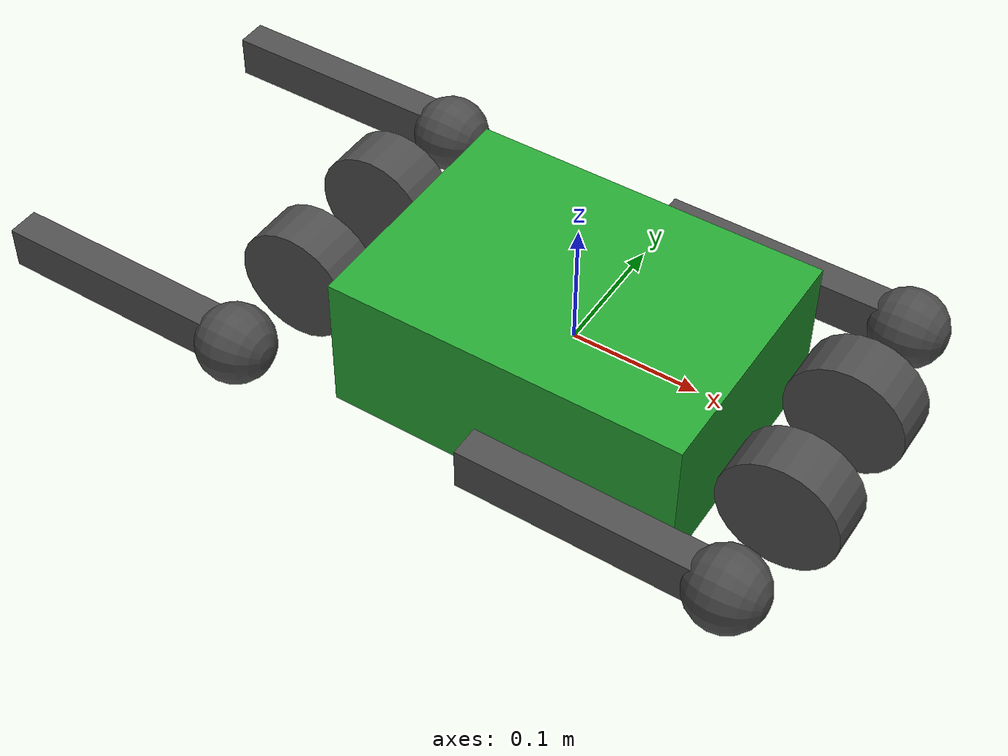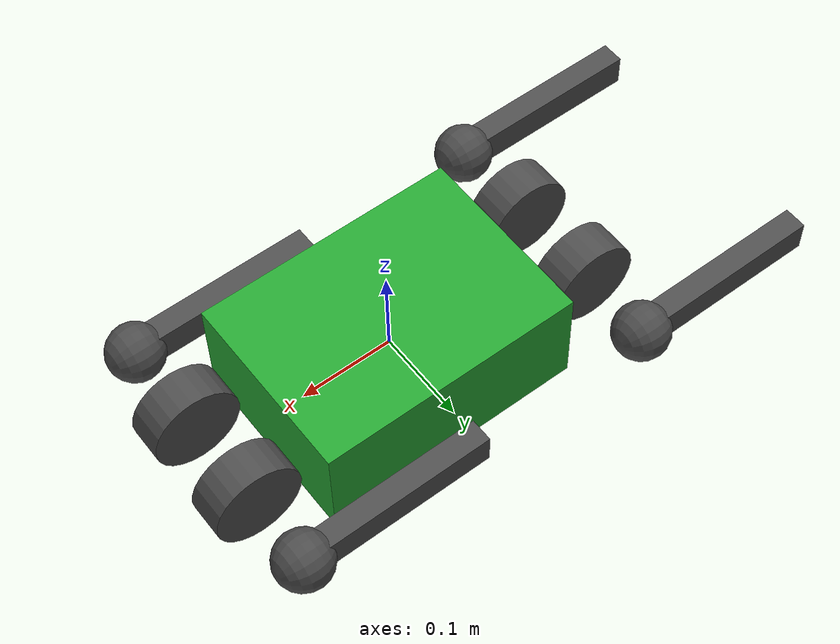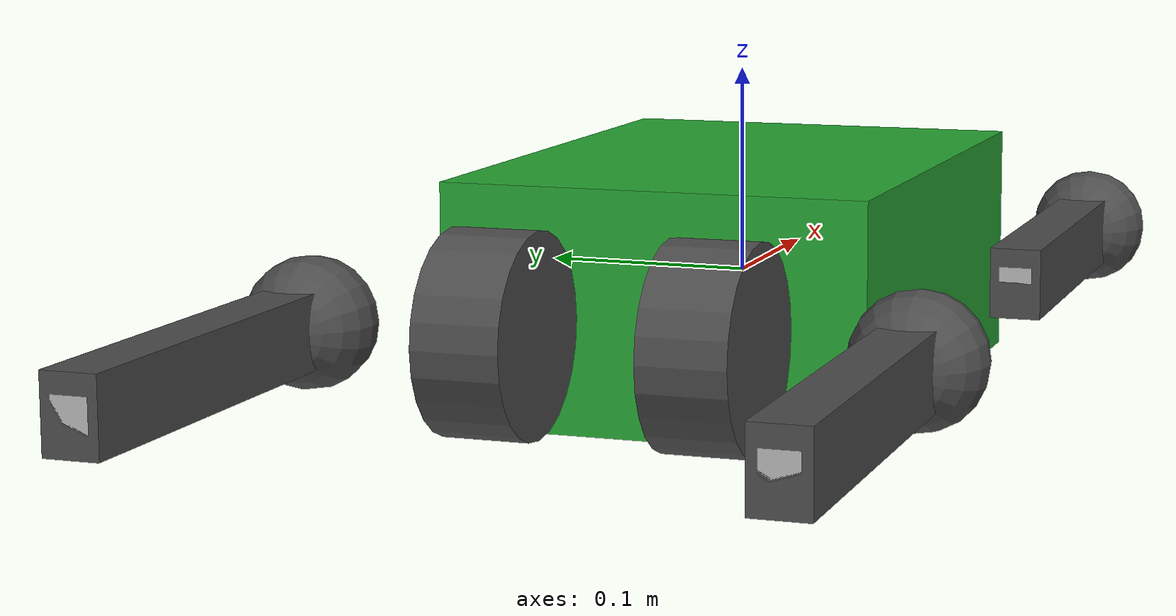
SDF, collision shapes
<sdf version='1.6'>
  <model name='wr2'>
    <link name='body'>
      <pose frame=''>0 0 0 0 -0 0</pose>
      <inertial>
        <pose frame=''>0.000676 -0.000166 -0.000173 0 -0 0</pose>
        <mass>4.9542</mass>
        <inertia>
          <ixx>0.0098737</ixx>
          <ixy>1.60821e-06</ixy>
          <ixz>6.10432e-06</ixz>
          <iyy>0.011313</iyy>
          <iyz>2.3576e-05</iyz>
          <izz>0.016884</izz>
        </inertia>
      </inertial>
      <collision name='body_collision_collision'>
        <pose frame=''>0 0 0 0 -0 0</pose>
        <geometry>
          <box>
            <size>0.28 0.202 0.114</size>
          </box>
        </geometry>
        <surface>
          <contact>
            <ode/>
          </contact>
          <friction>
            <ode/>
          </friction>
        </surface>
      </collision>
      <collision name='body_fixed_joint_lump__imu_link_collision_1'>
        <pose frame=''>0 0 0 0 -0 0</pose>
        <geometry>
          <box>
            <size>0.001 0.001 0.001</size>
          </box>
        </geometry>
        <surface>
          <contact>
            <ode/>
          </contact>
          <friction>
            <ode>
              <mu>0.5</mu>
              <mu2>0.5</mu2>
            </ode>
          </friction>
        </surface>
      </collision>
      <visual name='body_visual'>
        <pose frame=''>0 0 0 0 -0 0</pose>
        <geometry>
          <box>
            <size>0.001 0.001 0.001</size>
          </box>
        </geometry>
        <material>
          <script>
            <name>Gazebo/Green</name>
            <uri>file://media/materials/scripts/gazebo.material</uri>
          </script>
        </material>
      </visual>
      <visual name='body_visual_visual_1'>
        <pose frame=''>0 0 0 0 -0 0</pose>
        <geometry>
          <mesh>
            <scale>1 1 1</scale>
            <uri>model://wr2/meshes/base_link.STL</uri>
          </mesh>
        </geometry>
        <material>
          <script>
            <name>Gazebo/Green</name>
            <uri>file://media/materials/scripts/gazebo.material</uri>
          </script>
        </material>
      </visual>
      <visual name='body_fixed_joint_lump__imu_link_visual_2'>
        <pose frame=''>0 0 0 0 -0 0</pose>
        <geometry>
          <box>
            <size>0.001 0.001 0.001</size>
          </box>
        </geometry>
        <material>
          <script>
            <name>Gazebo/Red</name>
            <uri>file://media/materials/scripts/gazebo.material</uri>
          </script>
        </material>
      </visual>
      <velocity_decay/>
      <velocity_decay/>
      <velocity_decay/>
      <gravity>1</gravity>
      <sensor name='imu_sensor' type='imu'>
        <always_on>1</always_on>
        <update_rate>1000</update_rate>
        <visualize>1</visualize>
        <topic>__default_topic__</topic>
        <plugin name='imu_plugin' filename='libgazebo_ros_imu_sensor.so'>
          <topicName>trunk_imu</topicName>
          <bodyName>imu_link</bodyName>
          <updateRateHZ>1000.0</updateRateHZ>
          <gaussianNoise>0.0</gaussianNoise>
          <xyzOffset>0 0 0</xyzOffset>
          <rpyOffset>0 0 0</rpyOffset>
          <frameName>imu_link</frameName>
        </plugin>
        <pose frame=''>0 0 0 0 -0 0</pose>
      </sensor>
      <gravity>1</gravity>
      <velocity_decay/>
    </link>
    <link name='hip2'>
      <pose frame=''>0.1975 -0.05 0 0 -0 0</pose>
      <inertial>
        <pose frame=''>-0.003262 -0.004972 0.000385 0 -0 0</pose>
        <mass>0.74362</mass>
        <inertia>
          <ixx>0.00045939</ixx>
          <ixy>1.5543e-05</ixy>
          <ixz>6.1403e-07</ixz>
          <iyy>0.00075207</iyy>
          <iyz>-8.2076e-07</iyz>
          <izz>0.00049182</izz>
        </inertia>
      </inertial>
      <collision name='hip2_collision_collision'>
        <pose frame=''>0 0 0 1.5708 -0 0</pose>
        <geometry>
          <cylinder>
            <length>0.04</length>
            <radius>0.046</radius>
          </cylinder>
        </geometry>
        <surface>
          <contact>
            <ode/>
          </contact>
          <friction>
            <ode>
              <mu>0.5</mu>
              <mu2>0.5</mu2>
            </ode>
          </friction>
        </surface>
      </collision>
      <visual name='hip2_visual_visual'>
        <pose frame=''>0 0 0 -3.14159 -0 0</pose>
        <geometry>
          <mesh>
            <scale>1 1 1</scale>
            <uri>model://wr2/meshes/hip1_Link.STL</uri>
          </mesh>
        </geometry>
        <material>
          <script>
            <name>Gazebo/DarkGrey</name>
            <uri>file://media/materials/scripts/gazebo.material</uri>
          </script>
        </material>
      </visual>
      <gravity>1</gravity>
      <velocity_decay/>
    </link>
    <joint name='10' type='revolute'>
      <child>hip2</child>
      <parent>body</parent>
      <axis>
        <xyz>1 0 0</xyz>
        <limit>
          <lower>-0.785398</lower>
          <upper>0.785398</upper>
          <effort>33.5</effort>
          <velocity>21</velocity>
        </limit>
        <dynamics>
          <damping>0</damping>
          <friction>0</friction>
          <spring_reference>0</spring_reference>
          <spring_stiffness>0</spring_stiffness>
        </dynamics>
        <use_parent_model_frame>0</use_parent_model_frame>
      </axis>
    </joint>
    <link name='upper2'>
      <pose frame=''>0.1975 -0.1382 0 3.14159 1.57079 3.14159</pose>
      <inertial>
        <pose frame=''>-0.00293 0.022321 -0.020612 0 -0 0</pose>
        <mass>0.88958</mass>
        <inertia>
          <ixx>0.0016427</ixx>
          <ixy>-1.0138e-06</ixy>
          <ixz>-8.5809e-05</ixz>
          <iyy>0.0019549</iyy>
          <iyz>-1.1651e-06</iyz>
          <izz>0.00049228</izz>
        </inertia>
      </inertial>
      <collision name='upper2_collision_collision'>
        <pose frame=''>0 0 -0.1 3.14159 1.57079 3.14159</pose>
        <geometry>
          <box>
            <size>0.2 0.0245 0.034</size>
          </box>
        </geometry>
        <surface>
          <contact>
            <ode>
              <kp>1e+06</kp>
              <kd>1</kd>
            </ode>
          </contact>
          <friction>
            <ode>
              <mu>0.5</mu>
              <mu2>0.5</mu2>
            </ode>
          </friction>
        </surface>
      </collision>
      <visual name='upper2_visual_visual'>
        <pose frame=''>0 0 0 0 -0 0</pose>
        <geometry>
          <mesh>
            <scale>1 1 1</scale>
            <uri>model://wr2/meshes/upper1_Link.STL</uri>
          </mesh>
        </geometry>
        <material>
          <script>
            <name>Gazebo/DarkGrey</name>
            <uri>file://media/materials/scripts/gazebo.material</uri>
          </script>
        </material>
      </visual>
      <gravity>1</gravity>
      <velocity_decay/>
      <self_collide>0</self_collide>
    </link>
    <joint name='4' type='revolute'>
      <child>upper2</child>
      <parent>hip2</parent>
      <axis>
        <xyz>0 -1 0</xyz>
        <limit>
          <lower>-6.28319</lower>
          <upper>6.28319</upper>
          <effort>33.5</effort>
          <velocity>21</velocity>
        </limit>
        <dynamics>
          <damping>0</damping>
          <friction>0</friction>
          <spring_reference>0</spring_reference>
          <spring_stiffness>0</spring_stiffness>
        </dynamics>
        <use_parent_model_frame>0</use_parent_model_frame>
      </axis>
    </joint>
    <link name='lower2'>
      <pose frame=''>-0.0025 -0.1382 -0 3.14159 -1.57079 3.14159</pose>
      <inertial>
        <pose frame=''>0.006583 -3.5e-05 -0.059038 0 -0 0</pose>
        <mass>0.1193</mass>
        <inertia>
          <ixx>0.00033774</ixx>
          <ixy>-1.6102e-10</ixy>
          <ixz>4.2063e-05</ixz>
          <iyy>0.00034623</iyy>
          <iyz>-3.8747e-09</iyz>
          <izz>1.4561e-05</izz>
        </inertia>
      </inertial>
      <collision name='lower2_collision_collision'>
        <pose frame=''>0 0 -0.1 3.14159 1.57079 3.14159</pose>
        <geometry>
          <box>
            <size>0.2 0.016 0.016</size>
          </box>
        </geometry>
        <surface>
          <contact>
            <ode/>
          </contact>
          <friction>
            <ode>
              <mu>0.5</mu>
              <mu2>0.5</mu2>
            </ode>
          </friction>
        </surface>
      </collision>
      <visual name='lower2_visual_visual'>
        <pose frame=''>0 0 0 0 -0 0</pose>
        <geometry>
          <mesh>
            <scale>1 1 1</scale>
            <uri>model://wr2/meshes/lower0_Link.STL</uri>
          </mesh>
        </geometry>
        <material>
          <script>
            <uri>__default__</uri>
            <name>__default__</name>
          </script>
        </material>
      </visual>
      <gravity>1</gravity>
      <velocity_decay/>
      <self_collide>0</self_collide>
    </link>
    <joint name='5' type='revolute'>
      <child>lower2</child>
      <parent>upper2</parent>
      <axis>
        <xyz>0 1 0</xyz>
        <limit>
          <lower>-6.28319</lower>
          <upper>6.28319</upper>
          <effort>33.5</effort>
          <velocity>21</velocity>
        </limit>
        <dynamics>
          <damping>0</damping>
          <friction>0</friction>
          <spring_reference>0</spring_reference>
          <spring_stiffness>0</spring_stiffness>
        </dynamics>
        <use_parent_model_frame>0</use_parent_model_frame>
      </axis>
    </joint>
    <link name='toe2'>
      <pose frame=''>0.1975 -0.1382 0 3.14159 -1.57079 3.14159</pose>
      <inertial>
        <pose frame=''>0 0 0 0 -0 0</pose>
        <mass>0.013559</mass>
        <inertia>
          <ixx>4.88124e-06</ixx>
          <ixy>0</ixy>
          <ixz>0</ixz>
          <iyy>4.88124e-06</iyy>
          <iyz>0</iyz>
          <izz>4.88124e-06</izz>
        </inertia>
      </inertial>
      <collision name='toe2_collision_collision'>
        <pose frame=''>0 0 0 0 -0 0</pose>
        <geometry>
          <sphere>
            <radius>0.03</radius>
          </sphere>
        </geometry>
        <surface>
          <contact>
            <ode>
              <kp>1e+06</kp>
              <kd>1</kd>
            </ode>
          </contact>
          <friction>
            <ode>
              <mu>0.6</mu>
              <mu2>0.6</mu2>
            </ode>
          </friction>
        </surface>
      </collision>
      <visual name='toe2_visual_visual'>
        <pose frame=''>0 0 0 0 -0 0</pose>
        <geometry>
          <sphere>
            <radius>0.02</radius>
          </sphere>
        </geometry>
        <material>
          <script>
            <name>Gazebo/DarkGrey</name>
            <uri>file://media/materials/scripts/gazebo.material</uri>
          </script>
        </material>
      </visual>
      <velocity_decay/>
      <sensor name='toe2_contact' type='contact'>
        <plugin name='toe2_plugin' filename='libgazebo_ros_bumper.so'>
          <alwaysOn>1</alwaysOn>
          <updateRate>500</updateRate>
          <bumperTopicName>gazebo/toe2_contact_state</bumperTopicName>
          <frameName>world</frameName>
        </plugin>
        <contact>
          <collision>toe2_collision</collision>
          <topic>__default_topic__</topic>
        </contact>
        <update_rate>500</update_rate>
      </sensor>
      <gravity>1</gravity>
      <velocity_decay/>
      <self_collide>0</self_collide>
    </link>
    <joint name='jtoe2' type='fixed'>
      <child>toe2</child>
      <parent>lower2</parent>
      <axis>
        <dynamics>
          <spring_reference>0</spring_reference>
          <spring_stiffness>0</spring_stiffness>
        </dynamics>
        <xyz>0 0 1</xyz>
        <use_parent_model_frame>0</use_parent_model_frame>
        <limit>
          <lower>-1e+16</lower>
          <upper>1e+16</upper>
        </limit>
      </axis>
      <physics>
        <ode>
          <limit>
            <cfm>0</cfm>
            <erp>0.2</erp>
          </limit>
        </ode>
      </physics>
    </joint>
    <link name='hip3'>
      <pose frame=''>-0.1975 -0.05 0 0 -0 0</pose>
      <inertial>
        <pose frame=''>0.003262 -0.004972 0.000385 0 -0 0</pose>
        <mass>0.74362</mass>
        <inertia>
          <ixx>0.00045939</ixx>
          <ixy>-1.5543e-05</ixy>
          <ixz>-6.1403e-07</ixz>
          <iyy>0.00075207</iyy>
          <iyz>-8.2076e-07</iyz>
          <izz>0.00049182</izz>
        </inertia>
      </inertial>
      <collision name='hip3_collision_collision'>
        <pose frame=''>0 0 0 1.5708 -0 0</pose>
        <geometry>
          <cylinder>
            <length>0.04</length>
            <radius>0.046</radius>
          </cylinder>
        </geometry>
        <surface>
          <contact>
            <ode/>
          </contact>
          <friction>
            <ode>
              <mu>0.5</mu>
              <mu2>0.5</mu2>
            </ode>
          </friction>
        </surface>
      </collision>
      <visual name='hip3_visual_visual'>
        <pose frame=''>0 0 0 0 -0 3.14159</pose>
        <geometry>
          <mesh>
            <scale>1 1 1</scale>
            <uri>model://wr2/meshes/hip0_Link.STL</uri>
          </mesh>
        </geometry>
        <material>
          <script>
            <name>Gazebo/DarkGrey</name>
            <uri>file://media/materials/scripts/gazebo.material</uri>
          </script>
        </material>
      </visual>
      <gravity>1</gravity>
      <velocity_decay/>
    </link>
    <joint name='11' type='revolute'>
      <child>hip3</child>
      <parent>body</parent>
      <axis>
        <xyz>1 0 0</xyz>
        <limit>
          <lower>-0.785398</lower>
          <upper>0.785398</upper>
          <effort>33.5</effort>
          <velocity>21</velocity>
        </limit>
        <dynamics>
          <damping>0</damping>
          <friction>0</friction>
          <spring_reference>0</spring_reference>
          <spring_stiffness>0</spring_stiffness>
        </dynamics>
        <use_parent_model_frame>0</use_parent_model_frame>
      </axis>
    </joint>
    <link name='upper3'>
      <pose frame=''>-0.1975 -0.1382 0 3.14159 1.57079 3.14159</pose>
      <inertial>
        <pose frame=''>-0.00293 0.022321 -0.020612 0 -0 0</pose>
        <mass>0.88958</mass>
        <inertia>
          <ixx>0.0016427</ixx>
          <ixy>-1.0138e-06</ixy>
          <ixz>-8.5809e-05</ixz>
          <iyy>0.0019549</iyy>
          <iyz>-1.1651e-06</iyz>
          <izz>0.00049228</izz>
        </inertia>
      </inertial>
      <collision name='upper3_collision_collision'>
        <pose frame=''>0 0 -0.1 3.14159 1.57079 3.14159</pose>
        <geometry>
          <box>
            <size>0.2 0.0245 0.034</size>
          </box>
        </geometry>
        <surface>
          <contact>
            <ode>
              <kp>1e+06</kp>
              <kd>1</kd>
            </ode>
          </contact>
          <friction>
            <ode>
              <mu>0.5</mu>
              <mu2>0.5</mu2>
            </ode>
          </friction>
        </surface>
      </collision>
      <visual name='upper3_visual_visual'>
        <pose frame=''>0 0 0 0 -0 0</pose>
        <geometry>
          <mesh>
            <scale>1 1 1</scale>
            <uri>model://wr2/meshes/upper1_Link.STL</uri>
          </mesh>
        </geometry>
        <material>
          <script>
            <name>Gazebo/DarkGrey</name>
            <uri>file://media/materials/scripts/gazebo.material</uri>
          </script>
        </material>
      </visual>
      <gravity>1</gravity>
      <velocity_decay/>
      <self_collide>0</self_collide>
    </link>
    <joint name='6' type='revolute'>
      <child>upper3</child>
      <parent>hip3</parent>
      <axis>
        <xyz>0 -1 0</xyz>
        <limit>
          <lower>-6.28319</lower>
          <upper>6.28319</upper>
          <effort>33.5</effort>
          <velocity>21</velocity>
        </limit>
        <dynamics>
          <damping>0</damping>
          <friction>0</friction>
          <spring_reference>0</spring_reference>
          <spring_stiffness>0</spring_stiffness>
        </dynamics>
        <use_parent_model_frame>0</use_parent_model_frame>
      </axis>
    </joint>
    <link name='lower3'>
      <pose frame=''>-0.3975 -0.1382 -0 3.14159 -1.57079 3.14159</pose>
      <inertial>
        <pose frame=''>0.006583 -3.5e-05 -0.059038 0 -0 0</pose>
        <mass>0.1193</mass>
        <inertia>
          <ixx>0.00033774</ixx>
          <ixy>-1.6102e-10</ixy>
          <ixz>4.2063e-05</ixz>
          <iyy>0.00034623</iyy>
          <iyz>-3.8747e-09</iyz>
          <izz>1.4561e-05</izz>
        </inertia>
      </inertial>
      <collision name='lower3_collision_collision'>
        <pose frame=''>0 0 -0.1 3.14159 1.57079 3.14159</pose>
        <geometry>
          <box>
            <size>0.2 0.016 0.016</size>
          </box>
        </geometry>
        <surface>
          <contact>
            <ode/>
          </contact>
          <friction>
            <ode>
              <mu>0.5</mu>
              <mu2>0.5</mu2>
            </ode>
          </friction>
        </surface>
      </collision>
      <visual name='lower3_visual_visual'>
        <pose frame=''>0 0 0 0 -0 0</pose>
        <geometry>
          <mesh>
            <scale>1 1 1</scale>
            <uri>model://wr2/meshes/lower0_Link.STL</uri>
          </mesh>
        </geometry>
        <material>
          <script>
            <uri>__default__</uri>
            <name>__default__</name>
          </script>
        </material>
      </visual>
      <gravity>1</gravity>
      <velocity_decay/>
      <self_collide>0</self_collide>
    </link>
    <joint name='7' type='revolute'>
      <child>lower3</child>
      <parent>upper3</parent>
      <axis>
        <xyz>0 1 0</xyz>
        <limit>
          <lower>-6.28319</lower>
          <upper>6.28319</upper>
          <effort>33.5</effort>
          <velocity>21</velocity>
        </limit>
        <dynamics>
          <damping>0</damping>
          <friction>0</friction>
          <spring_reference>0</spring_reference>
          <spring_stiffness>0</spring_stiffness>
        </dynamics>
        <use_parent_model_frame>0</use_parent_model_frame>
      </axis>
    </joint>
    <link name='toe3'>
      <pose frame=''>-0.1975 -0.1382 0 3.14159 -1.57079 3.14159</pose>
      <inertial>
        <pose frame=''>0 0 0 0 -0 0</pose>
        <mass>0.013559</mass>
        <inertia>
          <ixx>4.88124e-06</ixx>
          <ixy>0</ixy>
          <ixz>0</ixz>
          <iyy>4.88124e-06</iyy>
          <iyz>0</iyz>
          <izz>4.88124e-06</izz>
        </inertia>
      </inertial>
      <collision name='toe3_collision_collision'>
        <pose frame=''>0 0 0 0 -0 0</pose>
        <geometry>
          <sphere>
            <radius>0.03</radius>
          </sphere>
        </geometry>
        <surface>
          <contact>
            <ode>
              <kp>1e+06</kp>
              <kd>1</kd>
            </ode>
          </contact>
          <friction>
            <ode>
              <mu>0.6</mu>
              <mu2>0.6</mu2>
            </ode>
          </friction>
        </surface>
      </collision>
      <visual name='toe3_visual_visual'>
        <pose frame=''>0 0 0 0 -0 0</pose>
        <geometry>
          <sphere>
            <radius>0.02</radius>
          </sphere>
        </geometry>
        <material>
          <script>
            <name>Gazebo/DarkGrey</name>
            <uri>file://media/materials/scripts/gazebo.material</uri>
          </script>
        </material>
      </visual>
      <velocity_decay/>
      <sensor name='toe3_contact' type='contact'>
        <plugin name='toe3_plugin' filename='libgazebo_ros_bumper.so'>
          <alwaysOn>1</alwaysOn>
          <updateRate>500</updateRate>
          <bumperTopicName>gazebo/toe3_contact_state</bumperTopicName>
          <frameName>world</frameName>
        </plugin>
        <contact>
          <collision>toe3_collision</collision>
          <topic>__default_topic__</topic>
        </contact>
        <update_rate>500</update_rate>
      </sensor>
      <gravity>1</gravity>
      <velocity_decay/>
      <self_collide>0</self_collide>
    </link>
    <joint name='jtoe3' type='fixed'>
      <child>toe3</child>
      <parent>lower3</parent>
      <axis>
        <dynamics>
          <spring_reference>0</spring_reference>
          <spring_stiffness>0</spring_stiffness>
        </dynamics>
        <xyz>0 0 1</xyz>
        <use_parent_model_frame>0</use_parent_model_frame>
        <limit>
          <lower>-1e+16</lower>
          <upper>1e+16</upper>
        </limit>
      </axis>
      <physics>
        <ode>
          <limit>
            <cfm>0</cfm>
            <erp>0.2</erp>
          </limit>
        </ode>
      </physics>
    </joint>
    <link name='hip0'>
      <pose frame=''>0.1975 0.05 0 0 -0 0</pose>
      <inertial>
        <pose frame=''>-0.003262 0.004972 0.000385 0 -0 0</pose>
        <mass>0.74362</mass>
        <inertia>
          <ixx>0.00045939</ixx>
          <ixy>-1.5543e-05</ixy>
          <ixz>6.1403e-07</ixz>
          <iyy>0.00075207</iyy>
          <iyz>8.2076e-07</iyz>
          <izz>0.00049182</izz>
        </inertia>
      </inertial>
      <collision name='hip0_collision_collision'>
        <pose frame=''>0 0 0 1.5708 -0 0</pose>
        <geometry>
          <cylinder>
            <length>0.04</length>
            <radius>0.046</radius>
          </cylinder>
        </geometry>
        <surface>
          <contact>
            <ode/>
          </contact>
          <friction>
            <ode>
              <mu>0.5</mu>
              <mu2>0.5</mu2>
            </ode>
          </friction>
        </surface>
      </collision>
      <visual name='hip0_visual_visual'>
        <pose frame=''>0 0 0 0 -0 0</pose>
        <geometry>
          <mesh>
            <scale>1 1 1</scale>
            <uri>model://wr2/meshes/hip0_Link.STL</uri>
          </mesh>
        </geometry>
        <material>
          <script>
            <name>Gazebo/DarkGrey</name>
            <uri>file://media/materials/scripts/gazebo.material</uri>
          </script>
        </material>
      </visual>
      <gravity>1</gravity>
      <velocity_decay/>
    </link>
    <joint name='8' type='revolute'>
      <child>hip0</child>
      <parent>body</parent>
      <axis>
        <xyz>1 0 0</xyz>
        <limit>
          <lower>-0.785398</lower>
          <upper>0.785398</upper>
          <effort>33.5</effort>
          <velocity>21</velocity>
        </limit>
        <dynamics>
          <damping>0</damping>
          <friction>0</friction>
          <spring_reference>0</spring_reference>
          <spring_stiffness>0</spring_stiffness>
        </dynamics>
        <use_parent_model_frame>0</use_parent_model_frame>
      </axis>
    </joint>
    <link name='upper0'>
      <pose frame=''>0.1975 0.1382 0 3.14159 1.57079 3.14159</pose>
      <inertial>
        <pose frame=''>-0.00293 -0.022321 -0.020612 0 -0 0</pose>
        <mass>0.88958</mass>
        <inertia>
          <ixx>0.0016427</ixx>
          <ixy>1.0138e-06</ixy>
          <ixz>-8.5809e-05</ixz>
          <iyy>0.0019549</iyy>
          <iyz>1.1651e-06</iyz>
          <izz>0.00049228</izz>
        </inertia>
      </inertial>
      <collision name='upper0_collision_collision'>
        <pose frame=''>0 0 -0.1 3.14159 1.57079 3.14159</pose>
        <geometry>
          <box>
            <size>0.2 0.0245 0.034</size>
          </box>
        </geometry>
        <surface>
          <contact>
            <ode>
              <kp>1e+06</kp>
              <kd>1</kd>
            </ode>
          </contact>
          <friction>
            <ode>
              <mu>0.5</mu>
              <mu2>0.5</mu2>
            </ode>
          </friction>
        </surface>
      </collision>
      <visual name='upper0_visual_visual'>
        <pose frame=''>0 0 0 0 -0 0</pose>
        <geometry>
          <mesh>
            <scale>1 1 1</scale>
            <uri>model://wr2/meshes/upper0_Link.STL</uri>
          </mesh>
        </geometry>
        <material>
          <script>
            <name>Gazebo/DarkGrey</name>
            <uri>file://media/materials/scripts/gazebo.material</uri>
          </script>
        </material>
      </visual>
      <gravity>1</gravity>
      <velocity_decay/>
      <self_collide>0</self_collide>
    </link>
    <joint name='0' type='revolute'>
      <child>upper0</child>
      <parent>hip0</parent>
      <axis>
        <xyz>0 -1 0</xyz>
        <limit>
          <lower>-6.28319</lower>
          <upper>6.28319</upper>
          <effort>33.5</effort>
          <velocity>21</velocity>
        </limit>
        <dynamics>
          <damping>0</damping>
          <friction>0</friction>
          <spring_reference>0</spring_reference>
          <spring_stiffness>0</spring_stiffness>
        </dynamics>
        <use_parent_model_frame>0</use_parent_model_frame>
      </axis>
    </joint>
    <link name='lower0'>
      <pose frame=''>-0.0025 0.1382 -0 3.14159 -1.57079 3.14159</pose>
      <inertial>
        <pose frame=''>0.006583 -3.5e-05 -0.059038 0 -0 0</pose>
        <mass>0.1193</mass>
        <inertia>
          <ixx>0.00033774</ixx>
          <ixy>-1.6102e-10</ixy>
          <ixz>4.2063e-05</ixz>
          <iyy>0.00034623</iyy>
          <iyz>-3.8747e-09</iyz>
          <izz>1.4561e-05</izz>
        </inertia>
      </inertial>
      <collision name='lower0_collision_collision'>
        <pose frame=''>0 0 -0.1 3.14159 1.57079 3.14159</pose>
        <geometry>
          <box>
            <size>0.2 0.016 0.016</size>
          </box>
        </geometry>
        <surface>
          <contact>
            <ode/>
          </contact>
          <friction>
            <ode>
              <mu>0.5</mu>
              <mu2>0.5</mu2>
            </ode>
          </friction>
        </surface>
      </collision>
      <visual name='lower0_visual_visual'>
        <pose frame=''>0 0 0 0 -0 0</pose>
        <geometry>
          <mesh>
            <scale>1 1 1</scale>
            <uri>model://wr2/meshes/lower0_Link.STL</uri>
          </mesh>
        </geometry>
        <material>
          <script>
            <uri>__default__</uri>
            <name>__default__</name>
          </script>
        </material>
      </visual>
      <gravity>1</gravity>
      <velocity_decay/>
      <self_collide>0</self_collide>
    </link>
    <joint name='1' type='revolute'>
      <child>lower0</child>
      <parent>upper0</parent>
      <axis>
        <xyz>0 1 0</xyz>
        <limit>
          <lower>-6.28319</lower>
          <upper>6.28319</upper>
          <effort>33.5</effort>
          <velocity>21</velocity>
        </limit>
        <dynamics>
          <damping>0</damping>
          <friction>0</friction>
          <spring_reference>0</spring_reference>
          <spring_stiffness>0</spring_stiffness>
        </dynamics>
        <use_parent_model_frame>0</use_parent_model_frame>
      </axis>
    </joint>
    <link name='toe0'>
      <pose frame=''>0.1975 0.1382 0 3.14159 -1.57079 3.14159</pose>
      <inertial>
        <pose frame=''>0 0 0 0 -0 0</pose>
        <mass>0.013559</mass>
        <inertia>
          <ixx>4.88124e-06</ixx>
          <ixy>0</ixy>
          <ixz>0</ixz>
          <iyy>4.88124e-06</iyy>
          <iyz>0</iyz>
          <izz>4.88124e-06</izz>
        </inertia>
      </inertial>
      <collision name='toe0_collision_collision'>
        <pose frame=''>0 0 0 0 -0 0</pose>
        <geometry>
          <sphere>
            <radius>0.03</radius>
          </sphere>
        </geometry>
        <surface>
          <contact>
            <ode>
              <kp>1e+06</kp>
              <kd>1</kd>
            </ode>
          </contact>
          <friction>
            <ode>
              <mu>0.6</mu>
              <mu2>0.6</mu2>
            </ode>
          </friction>
        </surface>
      </collision>
      <visual name='toe0_visual_visual'>
        <pose frame=''>0 0 0 0 -0 0</pose>
        <geometry>
          <sphere>
            <radius>0.02</radius>
          </sphere>
        </geometry>
        <material>
          <script>
            <name>Gazebo/DarkGrey</name>
            <uri>file://media/materials/scripts/gazebo.material</uri>
          </script>
        </material>
      </visual>
      <velocity_decay/>
      <sensor name='toe0_contact' type='contact'>
        <plugin name='toe0_plugin' filename='libgazebo_ros_bumper.so'>
          <alwaysOn>1</alwaysOn>
          <updateRate>500</updateRate>
          <bumperTopicName>gazebo/toe0_contact_state</bumperTopicName>
          <frameName>world</frameName>
        </plugin>
        <contact>
          <collision>toe0_collision</collision>
          <topic>__default_topic__</topic>
        </contact>
        <update_rate>500</update_rate>
      </sensor>
      <gravity>1</gravity>
      <velocity_decay/>
      <self_collide>0</self_collide>
    </link>
    <joint name='jtoe0' type='fixed'>
      <child>toe0</child>
      <parent>lower0</parent>
      <axis>
        <dynamics>
          <spring_reference>0</spring_reference>
          <spring_stiffness>0</spring_stiffness>
        </dynamics>
        <xyz>0 0 1</xyz>
        <use_parent_model_frame>0</use_parent_model_frame>
        <limit>
          <lower>-1e+16</lower>
          <upper>1e+16</upper>
        </limit>
      </axis>
      <physics>
        <ode>
          <limit>
            <cfm>0</cfm>
            <erp>0.2</erp>
          </limit>
        </ode>
      </physics>
    </joint>
    <link name='hip1'>
      <pose frame=''>-0.1975 0.05 0 0 -0 0</pose>
      <inertial>
        <pose frame=''>0.003262 0.004972 0.000385 0 -0 0</pose>
        <mass>0.74362</mass>
        <inertia>
          <ixx>0.00045939</ixx>
          <ixy>1.5543e-05</ixy>
          <ixz>-6.1403e-07</ixz>
          <iyy>0.00075207</iyy>
          <iyz>8.2076e-07</iyz>
          <izz>0.00049182</izz>
        </inertia>
      </inertial>
      <collision name='hip1_collision_collision'>
        <pose frame=''>0 0 0 1.5708 -0 0</pose>
        <geometry>
          <cylinder>
            <length>0.04</length>
            <radius>0.046</radius>
          </cylinder>
        </geometry>
        <surface>
          <contact>
            <ode/>
          </contact>
          <friction>
            <ode>
              <mu>0.5</mu>
              <mu2>0.5</mu2>
            </ode>
          </friction>
        </surface>
      </collision>
      <visual name='hip1_visual_visual'>
        <pose frame=''>0 0 0 3.14159 -0 3.14159</pose>
        <geometry>
          <mesh>
            <scale>1 1 1</scale>
            <uri>model://wr2/meshes/hip0_Link.STL</uri>
          </mesh>
        </geometry>
        <material>
          <script>
            <name>Gazebo/DarkGrey</name>
            <uri>file://media/materials/scripts/gazebo.material</uri>
          </script>
        </material>
      </visual>
      <gravity>1</gravity>
      <velocity_decay/>
    </link>
    <joint name='9' type='revolute'>
      <child>hip1</child>
      <parent>body</parent>
      <axis>
        <xyz>1 0 0</xyz>
        <limit>
          <lower>-0.785398</lower>
          <upper>0.785398</upper>
          <effort>33.5</effort>
          <velocity>21</velocity>
        </limit>
        <dynamics>
          <damping>0</damping>
          <friction>0</friction>
          <spring_reference>0</spring_reference>
          <spring_stiffness>0</spring_stiffness>
        </dynamics>
        <use_parent_model_frame>0</use_parent_model_frame>
      </axis>
    </joint>
    <link name='upper1'>
      <pose frame=''>-0.1975 0.1382 0 3.14159 1.57079 3.14159</pose>
      <inertial>
        <pose frame=''>-0.00293 -0.022321 -0.020612 0 -0 0</pose>
        <mass>0.88958</mass>
        <inertia>
          <ixx>0.0016427</ixx>
          <ixy>1.0138e-06</ixy>
          <ixz>-8.5809e-05</ixz>
          <iyy>0.0019549</iyy>
          <iyz>1.1651e-06</iyz>
          <izz>0.00049228</izz>
        </inertia>
      </inertial>
      <collision name='upper1_collision_collision'>
        <pose frame=''>0 0 -0.1 3.14159 1.57079 3.14159</pose>
        <geometry>
          <box>
            <size>0.2 0.0245 0.034</size>
          </box>
        </geometry>
        <surface>
          <contact>
            <ode>
              <kp>1e+06</kp>
              <kd>1</kd>
            </ode>
          </contact>
          <friction>
            <ode>
              <mu>0.5</mu>
              <mu2>0.5</mu2>
            </ode>
          </friction>
        </surface>
      </collision>
      <visual name='upper1_visual_visual'>
        <pose frame=''>0 0 0 0 -0 0</pose>
        <geometry>
          <mesh>
            <scale>1 1 1</scale>
            <uri>model://wr2/meshes/upper0_Link.STL</uri>
          </mesh>
        </geometry>
        <material>
          <script>
            <name>Gazebo/DarkGrey</name>
            <uri>file://media/materials/scripts/gazebo.material</uri>
          </script>
        </material>
      </visual>
      <gravity>1</gravity>
      <velocity_decay/>
      <self_collide>0</self_collide>
    </link>
    <joint name='2' type='revolute'>
      <child>upper1</child>
      <parent>hip1</parent>
      <axis>
        <xyz>0 -1 0</xyz>
        <limit>
          <lower>-6.28319</lower>
          <upper>6.28319</upper>
          <effort>33.5</effort>
          <velocity>21</velocity>
        </limit>
        <dynamics>
          <damping>0</damping>
          <friction>0</friction>
          <spring_reference>0</spring_reference>
          <spring_stiffness>0</spring_stiffness>
        </dynamics>
        <use_parent_model_frame>0</use_parent_model_frame>
      </axis>
    </joint>
    <link name='lower1'>
      <pose frame=''>-0.3975 0.1382 -0 3.14159 -1.57079 3.14159</pose>
      <inertial>
        <pose frame=''>0.006583 -3.5e-05 -0.059038 0 -0 0</pose>
        <mass>0.1193</mass>
        <inertia>
          <ixx>0.00033774</ixx>
          <ixy>-1.6102e-10</ixy>
          <ixz>4.2063e-05</ixz>
          <iyy>0.00034623</iyy>
          <iyz>-3.8747e-09</iyz>
          <izz>1.4561e-05</izz>
        </inertia>
      </inertial>
      <collision name='lower1_collision_collision'>
        <pose frame=''>0 0 -0.1 3.14159 1.57079 3.14159</pose>
        <geometry>
          <box>
            <size>0.2 0.016 0.016</size>
          </box>
        </geometry>
        <surface>
          <contact>
            <ode/>
          </contact>
          <friction>
            <ode>
              <mu>0.5</mu>
              <mu2>0.5</mu2>
            </ode>
          </friction>
        </surface>
      </collision>
      <visual name='lower1_visual_visual'>
        <pose frame=''>0 0 0 0 -0 0</pose>
        <geometry>
          <mesh>
            <scale>1 1 1</scale>
            <uri>model://wr2/meshes/lower0_Link.STL</uri>
          </mesh>
        </geometry>
        <material>
          <script>
            <uri>__default__</uri>
            <name>__default__</name>
          </script>
        </material>
      </visual>
      <gravity>1</gravity>
      <velocity_decay/>
      <self_collide>0</self_collide>
    </link>
    <joint name='3' type='revolute'>
      <child>lower1</child>
      <parent>upper1</parent>
      <axis>
        <xyz>0 1 0</xyz>
        <limit>
          <lower>-6.28319</lower>
          <upper>6.28319</upper>
          <effort>33.5</effort>
          <velocity>21</velocity>
        </limit>
        <dynamics>
          <damping>0</damping>
          <friction>0</friction>
          <spring_reference>0</spring_reference>
          <spring_stiffness>0</spring_stiffness>
        </dynamics>
        <use_parent_model_frame>0</use_parent_model_frame>
      </axis>
    </joint>
    <link name='toe1'>
      <pose frame=''>-0.1975 0.1382 0 3.14159 -1.57079 3.14159</pose>
      <inertial>
        <pose frame=''>0 0 0 0 -0 0</pose>
        <mass>0.013559</mass>
        <inertia>
          <ixx>4.88124e-06</ixx>
          <ixy>0</ixy>
          <ixz>0</ixz>
          <iyy>4.88124e-06</iyy>
          <iyz>0</iyz>
          <izz>4.88124e-06</izz>
        </inertia>
      </inertial>
      <collision name='toe1_collision_collision'>
        <pose frame=''>0 0 0 0 -0 0</pose>
        <geometry>
          <sphere>
            <radius>0.03</radius>
          </sphere>
        </geometry>
        <surface>
          <contact>
            <ode>
              <kp>1e+06</kp>
              <kd>1</kd>
            </ode>
          </contact>
          <friction>
            <ode>
              <mu>0.6</mu>
              <mu2>0.6</mu2>
            </ode>
          </friction>
        </surface>
      </collision>
      <visual name='toe1_visual_visual'>
        <pose frame=''>0 0 0 0 -0 0</pose>
        <geometry>
          <sphere>
            <radius>0.02</radius>
          </sphere>
        </geometry>
        <material>
          <script>
            <name>Gazebo/DarkGrey</name>
            <uri>file://media/materials/scripts/gazebo.material</uri>
          </script>
        </material>
      </visual>
      <velocity_decay/>
      <sensor name='toe1_contact' type='contact'>
        <plugin name='toe1_plugin' filename='libgazebo_ros_bumper.so'>
          <alwaysOn>1</alwaysOn>
          <updateRate>500</updateRate>
          <bumperTopicName>gazebo/toe1_contact_state</bumperTopicName>
          <frameName>world</frameName>
        </plugin>
        <contact>
          <collision>toe1_collision</collision>
          <topic>__default_topic__</topic>
        </contact>
        <update_rate>500</update_rate>
      </sensor>
      <gravity>1</gravity>
      <velocity_decay/>
      <self_collide>0</self_collide>
    </link>
    <joint name='jtoe1' type='fixed'>
      <child>toe1</child>
      <parent>lower1</parent>
      <axis>
        <dynamics>
          <spring_reference>0</spring_reference>
          <spring_stiffness>0</spring_stiffness>
        </dynamics>
        <xyz>0 0 1</xyz>
        <use_parent_model_frame>0</use_parent_model_frame>
        <limit>
          <lower>-1e+16</lower>
          <upper>1e+16</upper>
        </limit>
      </axis>
      <physics>
        <ode>
          <limit>
            <cfm>0</cfm>
            <erp>0.2</erp>
          </limit>
        </ode>
      </physics>
    </joint>
    <plugin name='gazebo_ros_control' filename='libgazebo_ros_control.so'>
      <robotSimType>gazebo_ros_control/DefaultRobotHWSim</robotSimType>
    </plugin>
    <plugin name='ground_truth_estimator' filename='libground_truth_estimator.so'>
      <updateRateHZ>500.0</updateRateHZ>
    </plugin>
    <static>0</static>
    <plugin name='gazebo_ros_force' filename='libgazebo_ros_force.so'>
      <topicName>/apply_force/trunk</topicName>
      <bodyName>body</bodyName>
      <xyzOffset>0 0 0</xyzOffset>
      <rpyOffset>0 -0 0</rpyOffset>
    </plugin>
  </model>
</sdf>
